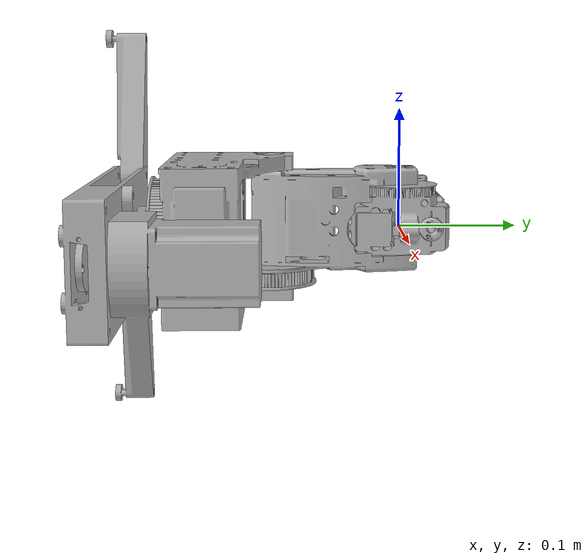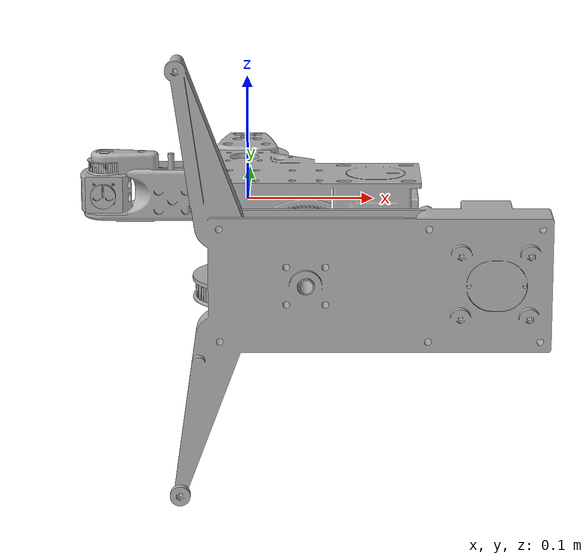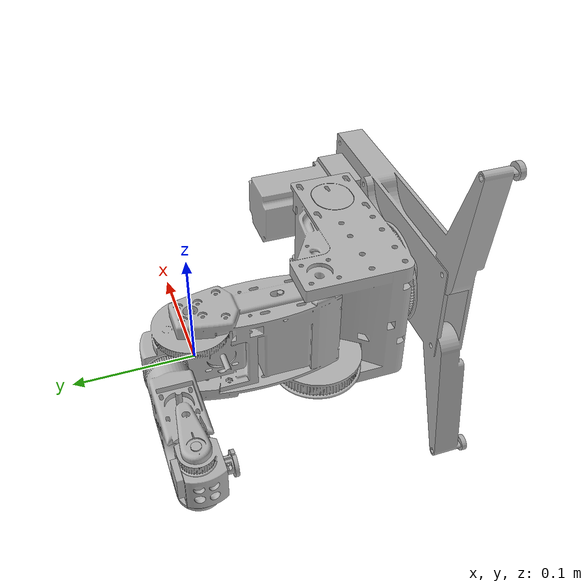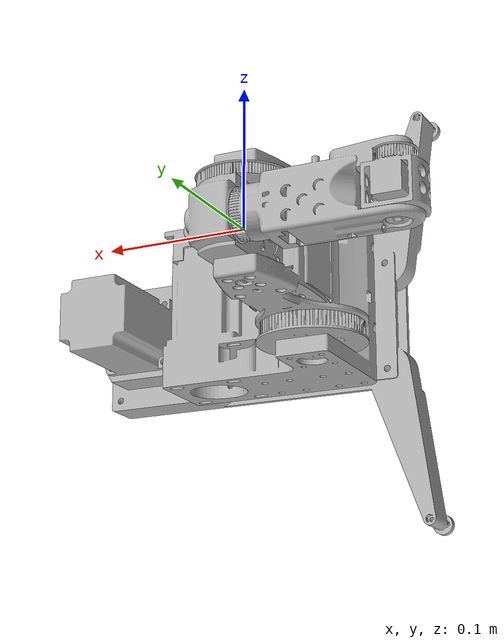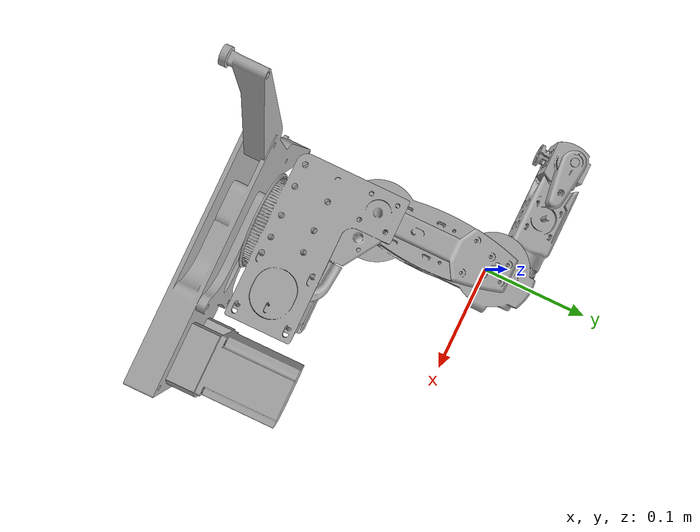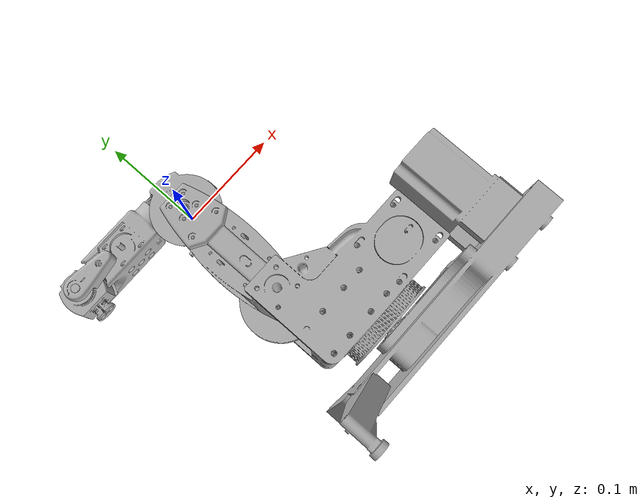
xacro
<?xml version="1.0" ?>
<robot name="srm_urdf" xmlns:xacro="http://www.ros.org/wiki/xacro">

<xacro:include filename="$(find srm_urdf_description)/urdf/materials.xacro" />
<xacro:include filename="$(find srm_urdf_description)/urdf/srm_urdf.trans" />
<xacro:include filename="$(find srm_urdf_description)/urdf/srm_urdf.gazebo" />
<link name="base_link">
  <inertial>
    <origin xyz="0.10568381868504272 -0.20590256745891375 0.006515567856673277" rpy="0 0 0"/>
    <mass value="6.7691812168031795"/>
    <inertia ixx="0.024906" iyy="0.072898" izz="0.065241" ixy="-0.011564" iyz="0.00098" ixz="0.006015"/>
  </inertial>
  <visual>
    <origin xyz="0 0 0" rpy="0 0 0"/>
    <geometry>
      <mesh filename="package://srm_urdf_description/meshes/base_link.stl" scale="0.001 0.001 0.001"/>
    </geometry>
    <material name="silver"/>
  </visual>
  <collision>
    <origin xyz="0 0 0" rpy="0 0 0"/>
    <geometry>
      <mesh filename="package://srm_urdf_description/meshes/base_link.stl" scale="0.001 0.001 0.001"/>
    </geometry>
  </collision>
</link>

<link name="link_0_1">
  <inertial>
    <origin xyz="0.0057414043556299615 0.04202043071093817 0.0017004351472542944" rpy="0 0 0"/>
    <mass value="7.354010683693323"/>
    <inertia ixx="0.013079" iyy="0.022247" izz="0.016572" ixy="0.000187" iyz="-0.000312" ixz="-8.9e-05"/>
  </inertial>
  <visual>
    <origin xyz="-0.047 0.205 -0.0005" rpy="0 0 0"/>
    <geometry>
      <mesh filename="package://srm_urdf_description/meshes/link_0_1.stl" scale="0.001 0.001 0.001"/>
    </geometry>
    <material name="silver"/>
  </visual>
  <collision>
    <origin xyz="-0.047 0.205 -0.0005" rpy="0 0 0"/>
    <geometry>
      <mesh filename="package://srm_urdf_description/meshes/link_0_1.stl" scale="0.001 0.001 0.001"/>
    </geometry>
  </collision>
</link>

<link name="link_1_1">
  <inertial>
    <origin xyz="0.0007062283060149213 0.03249199908132147 -0.014219526363014127" rpy="0 0 0"/>
    <mass value="2.8137687577683543"/>
    <inertia ixx="0.006245" iyy="0.003148" izz="0.00427" ixy="-4.3e-05" iyz="-0.000882" ixz="-2.9e-05"/>
  </inertial>
  <visual>
    <origin xyz="-0.0 0.11 -0.01275" rpy="0 0 0"/>
    <geometry>
      <mesh filename="package://srm_urdf_description/meshes/link_1_1.stl" scale="0.001 0.001 0.001"/>
    </geometry>
    <material name="silver"/>
  </visual>
  <collision>
    <origin xyz="-0.0 0.11 -0.01275" rpy="0 0 0"/>
    <geometry>
      <mesh filename="package://srm_urdf_description/meshes/link_1_1.stl" scale="0.001 0.001 0.001"/>
    </geometry>
  </collision>
</link>

<link name="link_2_1">
  <inertial>
    <origin xyz="0.005655179920818344 -0.0006639946683364204 0.030795357983687772" rpy="0 0 0"/>
    <mass value="1.0334607047767101"/>
    <inertia ixx="0.000804" iyy="0.000441" izz="0.00064" ixy="1e-06" iyz="-2e-06" ixz="3.7e-05"/>
  </inertial>
  <visual>
    <origin xyz="-0.0 0.0 0.02275" rpy="0 0 0"/>
    <geometry>
      <mesh filename="package://srm_urdf_description/meshes/link_2_1.stl" scale="0.001 0.001 0.001"/>
    </geometry>
    <material name="silver"/>
  </visual>
  <collision>
    <origin xyz="-0.0 0.0 0.02275" rpy="0 0 0"/>
    <geometry>
      <mesh filename="package://srm_urdf_description/meshes/link_2_1.stl" scale="0.001 0.001 0.001"/>
    </geometry>
  </collision>
</link>

<link name="link_3_1">
  <inertial>
    <origin xyz="-0.04727197567079266 7.69410115421254e-06 -0.0003577061243398847" rpy="0 0 0"/>
    <mass value="0.8514022633262588"/>
    <inertia ixx="0.000228" iyy="0.000894" izz="0.000818" ixy="-0.0" iyz="-0.0" ixz="1.1e-05"/>
  </inertial>
  <visual>
    <origin xyz="0.009 -0.026 -0.00025" rpy="0 0 0"/>
    <geometry>
      <mesh filename="package://srm_urdf_description/meshes/link_3_1.stl" scale="0.001 0.001 0.001"/>
    </geometry>
    <material name="silver"/>
  </visual>
  <collision>
    <origin xyz="0.009 -0.026 -0.00025" rpy="0 0 0"/>
    <geometry>
      <mesh filename="package://srm_urdf_description/meshes/link_3_1.stl" scale="0.001 0.001 0.001"/>
    </geometry>
  </collision>
</link>

<link name="link_4_1">
  <inertial>
    <origin xyz="0.0003315465873139356 -0.0009813987579149058 -0.021611662520797378" rpy="0 0 0"/>
    <mass value="0.24817393543220678"/>
    <inertia ixx="5.5e-05" iyy="5.4e-05" izz="4.2e-05" ixy="-0.0" iyz="-1e-06" ixz="0.0"/>
  </inertial>
  <visual>
    <origin xyz="0.116 -0.026 -0.02525" rpy="0 0 0"/>
    <geometry>
      <mesh filename="package://srm_urdf_description/meshes/link_4_1.stl" scale="0.001 0.001 0.001"/>
    </geometry>
    <material name="silver"/>
  </visual>
  <collision>
    <origin xyz="0.116 -0.026 -0.02525" rpy="0 0 0"/>
    <geometry>
      <mesh filename="package://srm_urdf_description/meshes/link_4_1.stl" scale="0.001 0.001 0.001"/>
    </geometry>
  </collision>
</link>

<link name="link_5_1">
  <inertial>
    <origin xyz="-1.3707104784543844e-08 0.0011488829522393927 -0.000522684591547189" rpy="0 0 0"/>
    <mass value="0.012501675944322615"/>
    <inertia ixx="0.0" iyy="0.0" izz="0.0" ixy="0.0" iyz="0.0" ixz="-0.0"/>
  </inertial>
  <visual>
    <origin xyz="0.115952 -0.001 -0.00125" rpy="0 0 0"/>
    <geometry>
      <mesh filename="package://srm_urdf_description/meshes/link_5_1.stl" scale="0.001 0.001 0.001"/>
    </geometry>
    <material name="silver"/>
  </visual>
  <collision>
    <origin xyz="0.115952 -0.001 -0.00125" rpy="0 0 0"/>
    <geometry>
      <mesh filename="package://srm_urdf_description/meshes/link_5_1.stl" scale="0.001 0.001 0.001"/>
    </geometry>
  </collision>
</link>

<joint name="joint_0" type="revolute">
  <origin xyz="0.047 -0.205 0.0005" rpy="0 0 0"/>
  <parent link="base_link"/>
  <child link="link_0_1"/>
  <axis xyz="0.0 1.0 0.0"/>
  <limit upper="1.396263" lower="-1.396263" effort="100" velocity="100"/>
</joint>

<joint name="joint_1" type="revolute">
  <origin xyz="-0.047 0.095 0.01225" rpy="0 0 0"/>
  <parent link="link_0_1"/>
  <child link="link_1_1"/>
  <axis xyz="-0.0 0.0 -1.0"/>
  <limit upper="1.396263" lower="-2.530727" effort="100" velocity="100"/>
</joint>

<joint name="joint_2" type="revolute">
  <origin xyz="0.0 0.11 -0.0355" rpy="0 0 0"/>
  <parent link="link_1_1"/>
  <child link="link_2_1"/>
  <axis xyz="-0.0 0.0 -1.0"/>
  <limit upper="1.047198" lower="-1.047198" effort="100" velocity="100"/>
</joint>

<joint name="joint_3" type="revolute">
  <origin xyz="-0.009 0.026 0.023" rpy="0 0 0"/>
  <parent link="link_2_1"/>
  <child link="link_3_1"/>
  <axis xyz="1.0 -0.0 -0.0"/>
  <limit upper="3.141593" lower="-3.141593" effort="100" velocity="100"/>
</joint>

<joint name="joint_4" type="revolute">
  <origin xyz="-0.107 0.0 0.025" rpy="0 0 0"/>
  <parent link="link_3_1"/>
  <child link="link_4_1"/>
  <axis xyz="-0.0 -0.0 1.0"/>
  <limit upper="0.436332" lower="-3.665191" effort="100" velocity="100"/>
</joint>

<joint name="joint_5" type="revolute">
  <origin xyz="4.8e-05 -0.025 -0.024" rpy="0 0 0"/>
  <parent link="link_4_1"/>
  <child link="link_5_1"/>
  <axis xyz="0.0 1.0 0.0"/>
  <limit upper="3.141593" lower="-3.141593" effort="100" velocity="100"/>
</joint>

</robot>

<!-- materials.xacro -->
<robot name="srm_urdf" xmlns:xacro="http://www.ros.org/wiki/xacro" >

<material name="silver">
  <color rgba="0.700 0.700 0.700 1.000"/>
</material>

</robot>

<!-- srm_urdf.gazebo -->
<robot name="srm_urdf" xmlns:xacro="http://www.ros.org/wiki/xacro" >

<xacro:property name="body_color" value="Gazebo/Silver" />

<gazebo>
  <plugin name="gazebo_ros_control" filename="libgazebo_ros_control.so"/>
  <robotNamespace>/srm_urdf</robotNamespace>
</gazebo>
<gazebo reference="base_link">
  <material>${body_color}</material>
  <mu1>0.2</mu1>
  <mu2>0.2</mu2>
  <selfCollide>true</selfCollide>
  <gravity>true</gravity>
</gazebo>

<gazebo reference="link_0_1">
  <material>${body_color}</material>
  <mu1>0.2</mu1>
  <mu2>0.2</mu2>
  <selfCollide>true</selfCollide>
</gazebo>

<gazebo reference="link_1_1">
  <material>${body_color}</material>
  <mu1>0.2</mu1>
  <mu2>0.2</mu2>
  <selfCollide>true</selfCollide>
</gazebo>

<gazebo reference="link_2_1">
  <material>${body_color}</material>
  <mu1>0.2</mu1>
  <mu2>0.2</mu2>
  <selfCollide>true</selfCollide>
</gazebo>

<gazebo reference="link_3_1">
  <material>${body_color}</material>
  <mu1>0.2</mu1>
  <mu2>0.2</mu2>
  <selfCollide>true</selfCollide>
</gazebo>

<gazebo reference="link_4_1">
  <material>${body_color}</material>
  <mu1>0.2</mu1>
  <mu2>0.2</mu2>
  <selfCollide>true</selfCollide>
</gazebo>

<gazebo reference="link_5_1">
  <material>${body_color}</material>
  <mu1>0.2</mu1>
  <mu2>0.2</mu2>
  <selfCollide>true</selfCollide>
</gazebo>

</robot>
